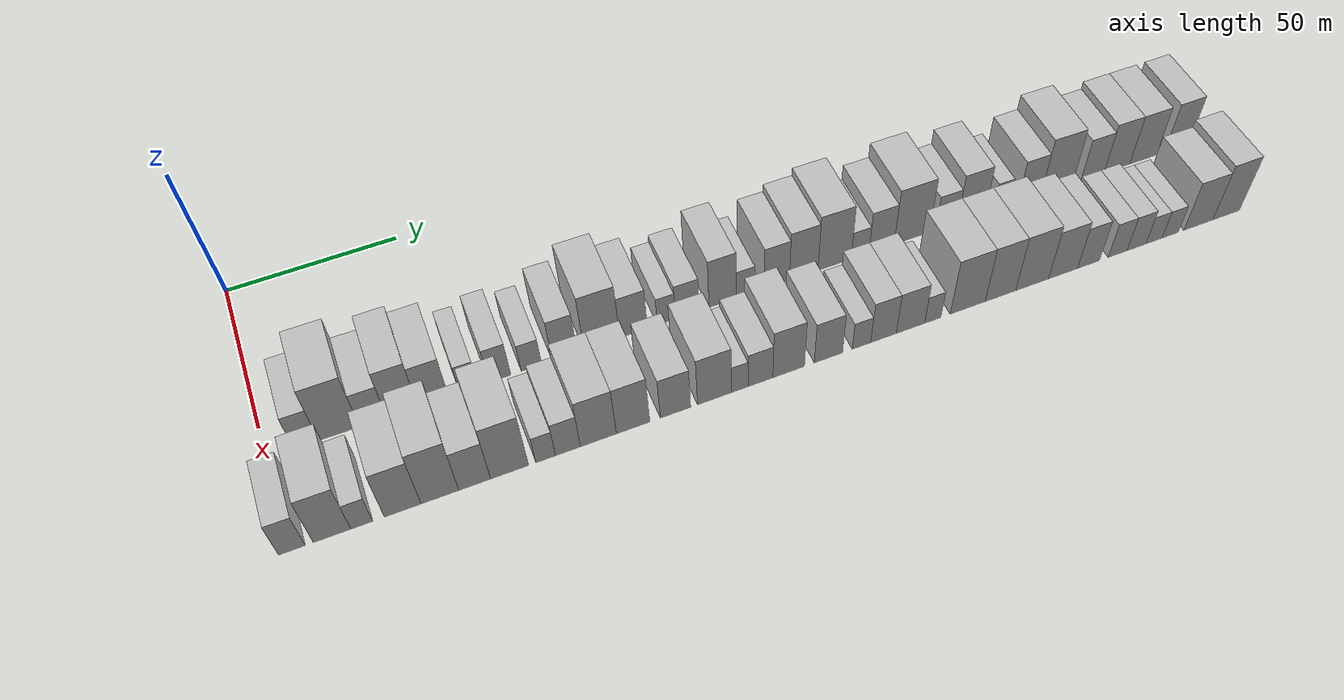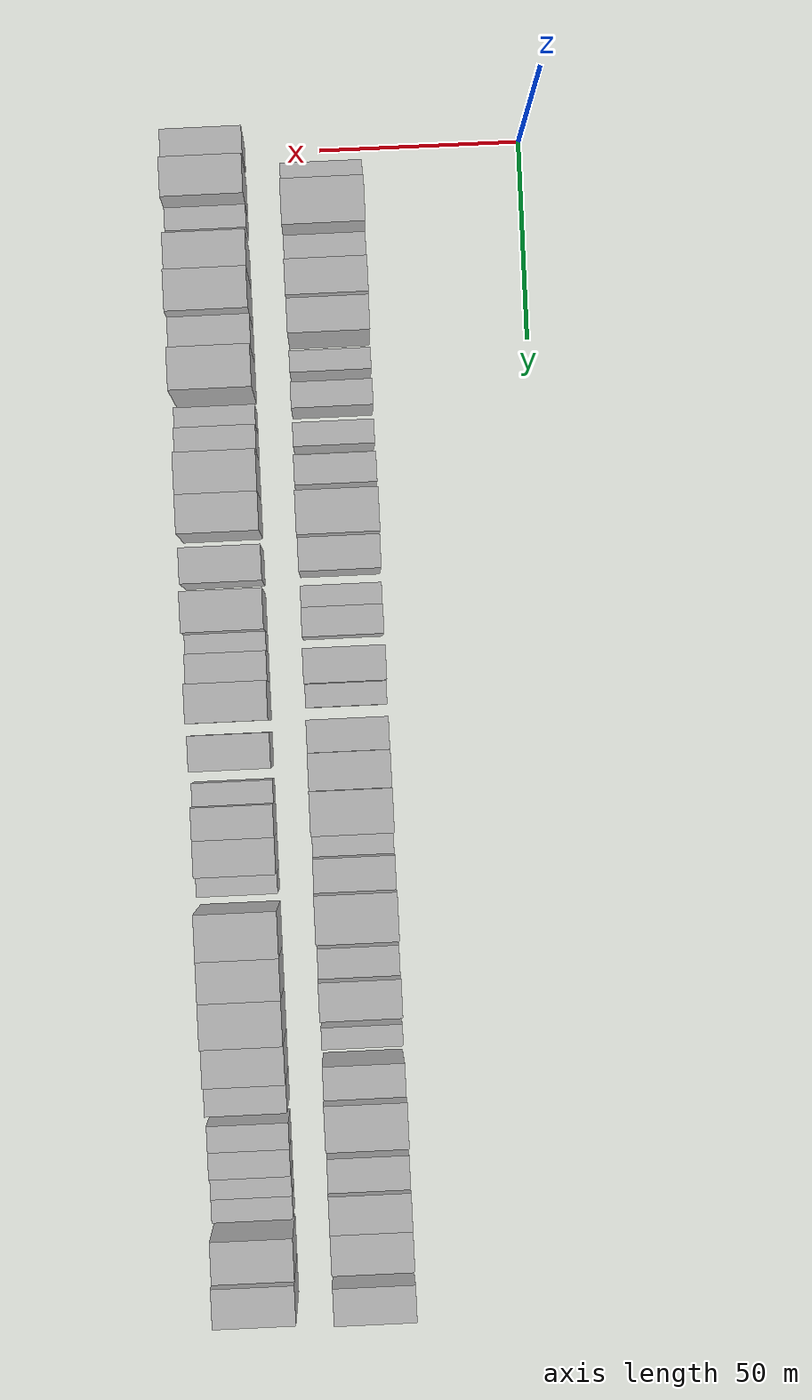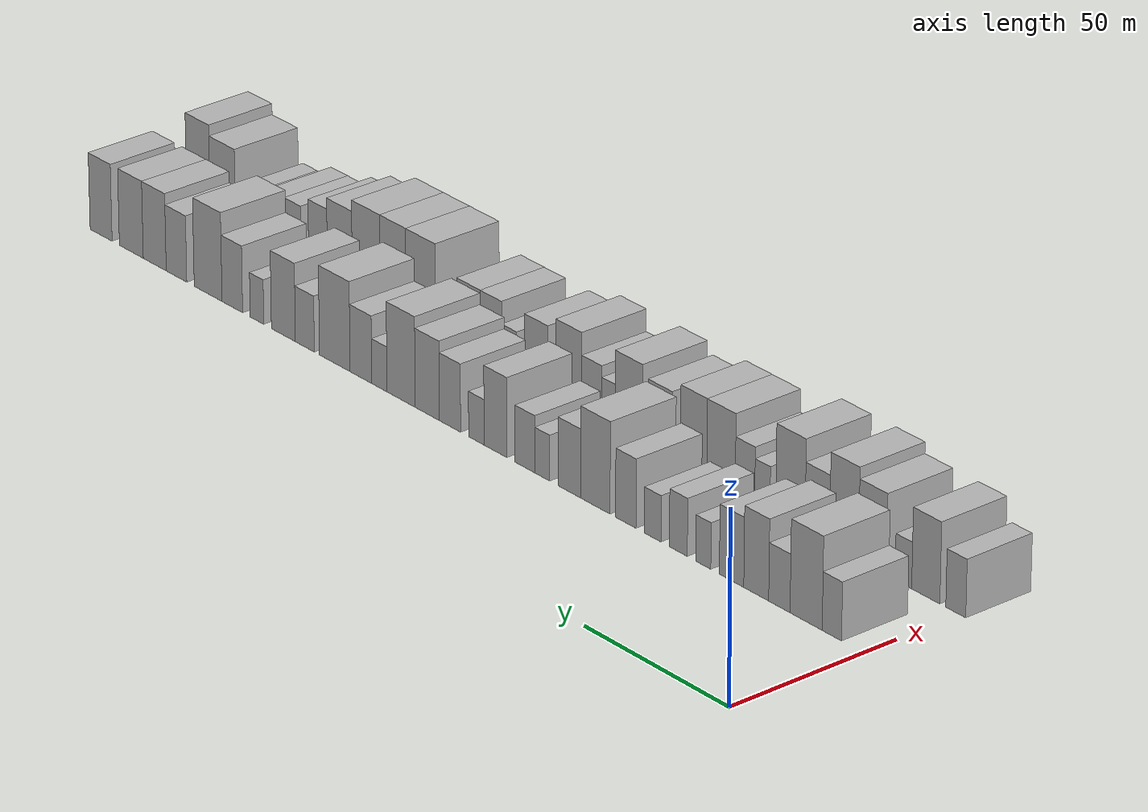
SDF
<sdf version="1.6">
 <world name="default">
  <model name="building_31">
   <static>1</static>
   <pose>50.0000 10.7795 0 0.000000 0.000000 0.000000</pose>
   <link name="link">
    <pose>0 0 7.50 0 0 0</pose>
    <collision name="collision"><geometry><box><size>20.0000 6.5830 15.0000</size></box></geometry></collision>
    <visual name="visual">
     <cast_shadows>0</cast_shadows>
     <geometry><box><size>20.0000 6.5830 15.0000</size></box></geometry>
     <material>
      <script>
       <uri>model://HANNAS_wall/materials/scripts</uri>
       <uri>model://HANNAS_wall/materials/textures</uri>
       <name>vrc/HANNAS_wall</name>
      </script>
     </material>
    </visual>
   </link>
  </model>
  <model name="building_32">
   <static>1</static>
   <pose>50.0000 19.5707 0 0.000000 0.000000 0.000000</pose>
   <link name="link">
    <pose>0 0 12.00 0 0 0</pose>
    <collision name="collision"><geometry><box><size>20.0000 10.9994 24.0000</size></box></geometry></collision>
    <visual name="visual">
     <cast_shadows>0</cast_shadows>
     <geometry><box><size>20.0000 10.9994 24.0000</size></box></geometry>
     <material>
      <script>
       <uri>model://HANNAS_wall/materials/scripts</uri>
       <uri>model://HANNAS_wall/materials/textures</uri>
       <name>vrc/HANNAS_wall</name>
      </script>
     </material>
    </visual>
   </link>
  </model>
  <model name="building_33">
   <static>1</static>
   <pose>50.0000 28.7614 0 0.000000 0.000000 0.000000</pose>
   <link name="link">
    <pose>0 0 7.50 0 0 0</pose>
    <collision name="collision"><geometry><box><size>20.0000 7.3819 15.0000</size></box></geometry></collision>
    <visual name="visual">
     <cast_shadows>0</cast_shadows>
     <geometry><box><size>20.0000 7.3819 15.0000</size></box></geometry>
     <material>
      <script>
       <uri>model://HANNAS_wall/materials/scripts</uri>
       <uri>model://HANNAS_wall/materials/textures</uri>
       <name>vrc/HANNAS_wall</name>
      </script>
     </material>
    </visual>
   </link>
  </model>
  <model name="building_34">
   <static>1</static>
   <pose>50.0000 36.7745 0 0.000000 0.000000 0.000000</pose>
   <link name="link">
    <pose>0 0 10.50 0 0 0</pose>
    <collision name="collision"><geometry><box><size>20.0000 8.6443 21.0000</size></box></geometry></collision>
    <visual name="visual">
     <cast_shadows>0</cast_shadows>
     <geometry><box><size>20.0000 8.6443 21.0000</size></box></geometry>
     <material>
      <script>
       <uri>model://HANNAS_wall/materials/scripts</uri>
       <uri>model://HANNAS_wall/materials/textures</uri>
       <name>vrc/HANNAS_wall</name>
      </script>
     </material>
    </visual>
   </link>
  </model>
  <model name="building_35">
   <static>1</static>
   <pose>50.0000 45.3542 0 0.000000 0.000000 0.000000</pose>
   <link name="link">
    <pose>0 0 9.00 0 0 0</pose>
    <collision name="collision"><geometry><box><size>20.0000 8.5152 18.0000</size></box></geometry></collision>
    <visual name="visual">
     <cast_shadows>0</cast_shadows>
     <geometry><box><size>20.0000 8.5152 18.0000</size></box></geometry>
     <material>
      <script>
       <uri>model://HANNAS_wall/materials/scripts</uri>
       <uri>model://HANNAS_wall/materials/textures</uri>
       <name>vrc/HANNAS_wall</name>
      </script>
     </material>
    </visual>
   </link>
  </model>
  <model name="building_36">
   <static>1</static>
   <pose>50.0000 55.2423 0 0.000000 0.000000 0.000000</pose>
   <link name="link">
    <pose>0 0 6.00 0 0 0</pose>
    <collision name="collision"><geometry><box><size>20.0000 5.2609 12.0000</size></box></geometry></collision>
    <visual name="visual">
     <cast_shadows>0</cast_shadows>
     <geometry><box><size>20.0000 5.2609 12.0000</size></box></geometry>
     <material>
      <script>
       <uri>model://HANNAS_wall/materials/scripts</uri>
       <uri>model://HANNAS_wall/materials/textures</uri>
       <name>vrc/HANNAS_wall</name>
      </script>
     </material>
    </visual>
   </link>
  </model>
  <model name="building_37">
   <static>1</static>
   <pose>50.0000 64.0448 0 0.000000 0.000000 0.000000</pose>
   <link name="link">
    <pose>0 0 7.50 0 0 0</pose>
    <collision name="collision"><geometry><box><size>20.0000 6.3442 15.0000</size></box></geometry></collision>
    <visual name="visual">
     <cast_shadows>0</cast_shadows>
     <geometry><box><size>20.0000 6.3442 15.0000</size></box></geometry>
     <material>
      <script>
       <uri>model://HANNAS_wall/materials/scripts</uri>
       <uri>model://HANNAS_wall/materials/textures</uri>
       <name>vrc/HANNAS_wall</name>
      </script>
     </material>
    </visual>
   </link>
  </model>
  <model name="building_38">
   <static>1</static>
   <pose>50.0000 73.1674 0 0.000000 0.000000 0.000000</pose>
   <link name="link">
    <pose>0 0 6.00 0 0 0</pose>
    <collision name="collision"><geometry><box><size>20.0000 5.9009 12.0000</size></box></geometry></collision>
    <visual name="visual">
     <cast_shadows>0</cast_shadows>
     <geometry><box><size>20.0000 5.9009 12.0000</size></box></geometry>
     <material>
      <script>
       <uri>model://HANNAS_wall/materials/scripts</uri>
       <uri>model://HANNAS_wall/materials/textures</uri>
       <name>vrc/HANNAS_wall</name>
      </script>
     </material>
    </visual>
   </link>
  </model>
  <model name="building_39">
   <static>1</static>
   <pose>50.0000 82.7733 0 0.000000 0.000000 0.000000</pose>
   <link name="link">
    <pose>0 0 9.00 0 0 0</pose>
    <collision name="collision"><geometry><box><size>20.0000 7.3110 18.0000</size></box></geometry></collision>
    <visual name="visual">
     <cast_shadows>0</cast_shadows>
     <geometry><box><size>20.0000 7.3110 18.0000</size></box></geometry>
     <material>
      <script>
       <uri>model://HANNAS_wall/materials/scripts</uri>
       <uri>model://HANNAS_wall/materials/textures</uri>
       <name>vrc/HANNAS_wall</name>
      </script>
     </material>
    </visual>
   </link>
  </model>
  <model name="building_40">
   <static>1</static>
   <pose>50.0000 93.7468 0 0.000000 0.000000 0.000000</pose>
   <link name="link">
    <pose>0 0 12.00 0 0 0</pose>
    <collision name="collision"><geometry><box><size>20.0000 10.6359 24.0000</size></box></geometry></collision>
    <visual name="visual">
     <cast_shadows>0</cast_shadows>
     <geometry><box><size>20.0000 10.6359 24.0000</size></box></geometry>
     <material>
      <script>
       <uri>model://HANNAS_wall/materials/scripts</uri>
       <uri>model://HANNAS_wall/materials/textures</uri>
       <name>vrc/HANNAS_wall</name>
      </script>
     </material>
    </visual>
   </link>
  </model>
  <model name="building_41">
   <static>1</static>
   <pose>50.0000 103.1954 0 0.000000 0.000000 0.000000</pose>
   <link name="link">
    <pose>0 0 9.00 0 0 0</pose>
    <collision name="collision"><geometry><box><size>20.0000 8.2614 18.0000</size></box></geometry></collision>
    <visual name="visual">
     <cast_shadows>0</cast_shadows>
     <geometry><box><size>20.0000 8.2614 18.0000</size></box></geometry>
     <material>
      <script>
       <uri>model://HANNAS_wall/materials/scripts</uri>
       <uri>model://HANNAS_wall/materials/textures</uri>
       <name>vrc/HANNAS_wall</name>
      </script>
     </material>
    </visual>
   </link>
  </model>
  <model name="building_42">
   <static>1</static>
   <pose>50.0000 113.0669 0 0.000000 0.000000 0.000000</pose>
   <link name="link">
    <pose>0 0 6.00 0 0 0</pose>
    <collision name="collision"><geometry><box><size>20.0000 5.4815 12.0000</size></box></geometry></collision>
    <visual name="visual">
     <cast_shadows>0</cast_shadows>
     <geometry><box><size>20.0000 5.4815 12.0000</size></box></geometry>
     <material>
      <script>
       <uri>model://HANNAS_wall/materials/scripts</uri>
       <uri>model://HANNAS_wall/materials/textures</uri>
       <name>vrc/HANNAS_wall</name>
      </script>
     </material>
    </visual>
   </link>
  </model>
  <model name="building_43">
   <static>1</static>
   <pose>50.0000 119.4377 0 0.000000 0.000000 0.000000</pose>
   <link name="link">
    <pose>0 0 7.50 0 0 0</pose>
    <collision name="collision"><geometry><box><size>20.0000 7.2602 15.0000</size></box></geometry></collision>
    <visual name="visual">
     <cast_shadows>0</cast_shadows>
     <geometry><box><size>20.0000 7.2602 15.0000</size></box></geometry>
     <material>
      <script>
       <uri>model://HANNAS_wall/materials/scripts</uri>
       <uri>model://HANNAS_wall/materials/textures</uri>
       <name>vrc/HANNAS_wall</name>
      </script>
     </material>
    </visual>
   </link>
  </model>
  <model name="building_44">
   <static>1</static>
   <pose>50.0000 130.3110 0 0.000000 0.000000 0.000000</pose>
   <link name="link">
    <pose>0 0 10.50 0 0 0</pose>
    <collision name="collision"><geometry><box><size>20.0000 8.4865 21.0000</size></box></geometry></collision>
    <visual name="visual">
     <cast_shadows>0</cast_shadows>
     <geometry><box><size>20.0000 8.4865 21.0000</size></box></geometry>
     <material>
      <script>
       <uri>model://HANNAS_wall/materials/scripts</uri>
       <uri>model://HANNAS_wall/materials/textures</uri>
       <name>vrc/HANNAS_wall</name>
      </script>
     </material>
    </visual>
   </link>
  </model>
  <model name="building_45">
   <static>1</static>
   <pose>50.0000 137.4243 0 0.000000 0.000000 0.000000</pose>
   <link name="link">
    <pose>0 0 6.00 0 0 0</pose>
    <collision name="collision"><geometry><box><size>20.0000 5.7400 12.0000</size></box></geometry></collision>
    <visual name="visual">
     <cast_shadows>0</cast_shadows>
     <geometry><box><size>20.0000 5.7400 12.0000</size></box></geometry>
     <material>
      <script>
       <uri>model://HANNAS_wall/materials/scripts</uri>
       <uri>model://HANNAS_wall/materials/textures</uri>
       <name>vrc/HANNAS_wall</name>
      </script>
     </material>
    </visual>
   </link>
  </model>
  <model name="building_46">
   <static>1</static>
   <pose>50.0000 147.2909 0 0.000000 0.000000 0.000000</pose>
   <link name="link">
    <pose>0 0 9.00 0 0 0</pose>
    <collision name="collision"><geometry><box><size>20.0000 7.9932 18.0000</size></box></geometry></collision>
    <visual name="visual">
     <cast_shadows>0</cast_shadows>
     <geometry><box><size>20.0000 7.9932 18.0000</size></box></geometry>
     <material>
      <script>
       <uri>model://HANNAS_wall/materials/scripts</uri>
       <uri>model://HANNAS_wall/materials/textures</uri>
       <name>vrc/HANNAS_wall</name>
      </script>
     </material>
    </visual>
   </link>
  </model>
  <model name="building_47">
   <static>1</static>
   <pose>50.0000 155.8507 0 0.000000 0.000000 0.000000</pose>
   <link name="link">
    <pose>0 0 10.50 0 0 0</pose>
    <collision name="collision"><geometry><box><size>20.0000 9.1264 21.0000</size></box></geometry></collision>
    <visual name="visual">
     <cast_shadows>0</cast_shadows>
     <geometry><box><size>20.0000 9.1264 21.0000</size></box></geometry>
     <material>
      <script>
       <uri>model://HANNAS_wall/materials/scripts</uri>
       <uri>model://HANNAS_wall/materials/textures</uri>
       <name>vrc/HANNAS_wall</name>
      </script>
     </material>
    </visual>
   </link>
  </model>
  <model name="building_48">
   <static>1</static>
   <pose>50.0000 165.7741 0 0.000000 0.000000 0.000000</pose>
   <link name="link">
    <pose>0 0 12.00 0 0 0</pose>
    <collision name="collision"><geometry><box><size>20.0000 10.7204 24.0000</size></box></geometry></collision>
    <visual name="visual">
     <cast_shadows>0</cast_shadows>
     <geometry><box><size>20.0000 10.7204 24.0000</size></box></geometry>
     <material>
      <script>
       <uri>model://HANNAS_wall/materials/scripts</uri>
       <uri>model://HANNAS_wall/materials/textures</uri>
       <name>vrc/HANNAS_wall</name>
      </script>
     </material>
    </visual>
   </link>
  </model>
  <model name="building_49">
   <static>1</static>
   <pose>50.0000 174.0424 0 0.000000 0.000000 0.000000</pose>
   <link name="link">
    <pose>0 0 6.00 0 0 0</pose>
    <collision name="collision"><geometry><box><size>20.0000 5.8160 12.0000</size></box></geometry></collision>
    <visual name="visual">
     <cast_shadows>0</cast_shadows>
     <geometry><box><size>20.0000 5.8160 12.0000</size></box></geometry>
     <material>
      <script>
       <uri>model://HANNAS_wall/materials/scripts</uri>
       <uri>model://HANNAS_wall/materials/textures</uri>
       <name>vrc/HANNAS_wall</name>
      </script>
     </material>
    </visual>
   </link>
  </model>
  <model name="building_50">
   <static>1</static>
   <pose>50.0000 181.1115 0 0.000000 0.000000 0.000000</pose>
   <link name="link">
    <pose>0 0 9.00 0 0 0</pose>
    <collision name="collision"><geometry><box><size>20.0000 8.3222 18.0000</size></box></geometry></collision>
    <visual name="visual">
     <cast_shadows>0</cast_shadows>
     <geometry><box><size>20.0000 8.3222 18.0000</size></box></geometry>
     <material>
      <script>
       <uri>model://HANNAS_wall/materials/scripts</uri>
       <uri>model://HANNAS_wall/materials/textures</uri>
       <name>vrc/HANNAS_wall</name>
      </script>
     </material>
    </visual>
   </link>
  </model>
  <model name="building_51">
   <static>1</static>
   <pose>50.0000 191.1961 0 0.000000 0.000000 0.000000</pose>
   <link name="link">
    <pose>0 0 12.00 0 0 0</pose>
    <collision name="collision"><geometry><box><size>20.0000 11.8470 24.0000</size></box></geometry></collision>
    <visual name="visual">
     <cast_shadows>0</cast_shadows>
     <geometry><box><size>20.0000 11.8470 24.0000</size></box></geometry>
     <material>
      <script>
       <uri>model://HANNAS_wall/materials/scripts</uri>
       <uri>model://HANNAS_wall/materials/textures</uri>
       <name>vrc/HANNAS_wall</name>
      </script>
     </material>
    </visual>
   </link>
  </model>
  <model name="building_52">
   <static>1</static>
   <pose>50.0000 202.8161 0 0.000000 0.000000 0.000000</pose>
   <link name="link">
    <pose>0 0 7.50 0 0 0</pose>
    <collision name="collision"><geometry><box><size>20.0000 7.3930 15.0000</size></box></geometry></collision>
    <visual name="visual">
     <cast_shadows>0</cast_shadows>
     <geometry><box><size>20.0000 7.3930 15.0000</size></box></geometry>
     <material>
      <script>
       <uri>model://HANNAS_wall/materials/scripts</uri>
       <uri>model://HANNAS_wall/materials/textures</uri>
       <name>vrc/HANNAS_wall</name>
      </script>
     </material>
    </visual>
   </link>
  </model>
  <model name="building_53">
   <static>1</static>
   <pose>50.0000 211.2245 0 0.000000 0.000000 0.000000</pose>
   <link name="link">
    <pose>0 0 10.50 0 0 0</pose>
    <collision name="collision"><geometry><box><size>20.0000 9.4239 21.0000</size></box></geometry></collision>
    <visual name="visual">
     <cast_shadows>0</cast_shadows>
     <geometry><box><size>20.0000 9.4239 21.0000</size></box></geometry>
     <material>
      <script>
       <uri>model://HANNAS_wall/materials/scripts</uri>
       <uri>model://HANNAS_wall/materials/textures</uri>
       <name>vrc/HANNAS_wall</name>
      </script>
     </material>
    </visual>
   </link>
  </model>
  <model name="building_54">
   <static>1</static>
   <pose>50.0000 221.6226 0 0.000000 0.000000 0.000000</pose>
   <link name="link">
    <pose>0 0 6.00 0 0 0</pose>
    <collision name="collision"><geometry><box><size>20.0000 5.3722 12.0000</size></box></geometry></collision>
    <visual name="visual">
     <cast_shadows>0</cast_shadows>
     <geometry><box><size>20.0000 5.3722 12.0000</size></box></geometry>
     <material>
      <script>
       <uri>model://HANNAS_wall/materials/scripts</uri>
       <uri>model://HANNAS_wall/materials/textures</uri>
       <name>vrc/HANNAS_wall</name>
      </script>
     </material>
    </visual>
   </link>
  </model>
  <model name="building_55">
   <static>1</static>
   <pose>50.0000 231.4032 0 0.000000 0.000000 0.000000</pose>
   <link name="link">
    <pose>0 0 9.00 0 0 0</pose>
    <collision name="collision"><geometry><box><size>20.0000 8.1891 18.0000</size></box></geometry></collision>
    <visual name="visual">
     <cast_shadows>0</cast_shadows>
     <geometry><box><size>20.0000 8.1891 18.0000</size></box></geometry>
     <material>
      <script>
       <uri>model://HANNAS_wall/materials/scripts</uri>
       <uri>model://HANNAS_wall/materials/textures</uri>
       <name>vrc/HANNAS_wall</name>
      </script>
     </material>
    </visual>
   </link>
  </model>
  <model name="building_56">
   <static>1</static>
   <pose>50.0000 241.0677 0 0.000000 0.000000 0.000000</pose>
   <link name="link">
    <pose>0 0 12.00 0 0 0</pose>
    <collision name="collision"><geometry><box><size>20.0000 11.1399 24.0000</size></box></geometry></collision>
    <visual name="visual">
     <cast_shadows>0</cast_shadows>
     <geometry><box><size>20.0000 11.1399 24.0000</size></box></geometry>
     <material>
      <script>
       <uri>model://HANNAS_wall/materials/scripts</uri>
       <uri>model://HANNAS_wall/materials/textures</uri>
       <name>vrc/HANNAS_wall</name>
      </script>
     </material>
    </visual>
   </link>
  </model>
  <model name="building_57">
   <static>1</static>
   <pose>50.0000 253.7902 0 0.000000 0.000000 0.000000</pose>
   <link name="link">
    <pose>0 0 9.00 0 0 0</pose>
    <collision name="collision"><geometry><box><size>20.0000 8.3051 18.0000</size></box></geometry></collision>
    <visual name="visual">
     <cast_shadows>0</cast_shadows>
     <geometry><box><size>20.0000 8.3051 18.0000</size></box></geometry>
     <material>
      <script>
       <uri>model://HANNAS_wall/materials/scripts</uri>
       <uri>model://HANNAS_wall/materials/textures</uri>
       <name>vrc/HANNAS_wall</name>
      </script>
     </material>
    </visual>
   </link>
  </model>
  <model name="building_58">
   <static>1</static>
   <pose>50.0000 262.6030 0 0.000000 0.000000 0.000000</pose>
   <link name="link">
    <pose>0 0 10.50 0 0 0</pose>
    <collision name="collision"><geometry><box><size>20.0000 9.3206 21.0000</size></box></geometry></collision>
    <visual name="visual">
     <cast_shadows>0</cast_shadows>
     <geometry><box><size>20.0000 9.3206 21.0000</size></box></geometry>
     <material>
      <script>
       <uri>model://HANNAS_wall/materials/scripts</uri>
       <uri>model://HANNAS_wall/materials/textures</uri>
       <name>vrc/HANNAS_wall</name>
      </script>
     </material>
    </visual>
   </link>
  </model>
  <model name="building_59">
   <static>1</static>
   <pose>50.0000 272.1451 0 0.000000 0.000000 0.000000</pose>
   <link name="link">
    <pose>0 0 10.50 0 0 0</pose>
    <collision name="collision"><geometry><box><size>20.0000 9.7635 21.0000</size></box></geometry></collision>
    <visual name="visual">
     <cast_shadows>0</cast_shadows>
     <geometry><box><size>20.0000 9.7635 21.0000</size></box></geometry>
     <material>
      <script>
       <uri>model://HANNAS_wall/materials/scripts</uri>
       <uri>model://HANNAS_wall/materials/textures</uri>
       <name>vrc/HANNAS_wall</name>
      </script>
     </material>
    </visual>
   </link>
  </model>
  <model name="building_60">
   <static>1</static>
   <pose>50.0000 284.5463 0 0.000000 0.000000 0.000000</pose>
   <link name="link">
    <pose>0 0 10.50 0 0 0</pose>
    <collision name="collision"><geometry><box><size>20.0000 9.0389 21.0000</size></box></geometry></collision>
    <visual name="visual">
     <cast_shadows>0</cast_shadows>
     <geometry><box><size>20.0000 9.0389 21.0000</size></box></geometry>
     <material>
      <script>
       <uri>model://HANNAS_wall/materials/scripts</uri>
       <uri>model://HANNAS_wall/materials/textures</uri>
       <name>vrc/HANNAS_wall</name>
      </script>
     </material>
    </visual>
   </link>
  </model>
  <model name="building_93">
   <static>1</static>
   <pose>79.0000 1.1719 0 0.000000 0.000000 0.000000</pose>
   <link name="link">
    <pose>0 0 7.50 0 0 0</pose>
    <collision name="collision"><geometry><box><size>20.0000 6.7322 15.0000</size></box></geometry></collision>
    <visual name="visual">
     <cast_shadows>0</cast_shadows>
     <geometry><box><size>20.0000 6.7322 15.0000</size></box></geometry>
     <material>
      <script>
       <uri>model://HANNAS_wall/materials/scripts</uri>
       <uri>model://HANNAS_wall/materials/textures</uri>
       <name>vrc/HANNAS_wall</name>
      </script>
     </material>
    </visual>
   </link>
  </model>
  <model name="building_94">
   <static>1</static>
   <pose>79.0000 11.3233 0 0.000000 0.000000 0.000000</pose>
   <link name="link">
    <pose>0 0 10.50 0 0 0</pose>
    <collision name="collision"><geometry><box><size>20.0000 9.5707 21.0000</size></box></geometry></collision>
    <visual name="visual">
     <cast_shadows>0</cast_shadows>
     <geometry><box><size>20.0000 9.5707 21.0000</size></box></geometry>
     <material>
      <script>
       <uri>model://HANNAS_wall/materials/scripts</uri>
       <uri>model://HANNAS_wall/materials/textures</uri>
       <name>vrc/HANNAS_wall</name>
      </script>
     </material>
    </visual>
   </link>
  </model>
  <model name="building_95">
   <static>1</static>
   <pose>79.0000 18.9396 0 0.000000 0.000000 0.000000</pose>
   <link name="link">
    <pose>0 0 6.00 0 0 0</pose>
    <collision name="collision"><geometry><box><size>20.0000 5.6618 12.0000</size></box></geometry></collision>
    <visual name="visual">
     <cast_shadows>0</cast_shadows>
     <geometry><box><size>20.0000 5.6618 12.0000</size></box></geometry>
     <material>
      <script>
       <uri>model://HANNAS_wall/materials/scripts</uri>
       <uri>model://HANNAS_wall/materials/textures</uri>
       <name>vrc/HANNAS_wall</name>
      </script>
     </material>
    </visual>
   </link>
  </model>
  <model name="building_96">
   <static>1</static>
   <pose>79.0000 29.5734 0 0.000000 0.000000 0.000000</pose>
   <link name="link">
    <pose>0 0 10.50 0 0 0</pose>
    <collision name="collision"><geometry><box><size>20.0000 9.6057 21.0000</size></box></geometry></collision>
    <visual name="visual">
     <cast_shadows>0</cast_shadows>
     <geometry><box><size>20.0000 9.6057 21.0000</size></box></geometry>
     <material>
      <script>
       <uri>model://HANNAS_wall/materials/scripts</uri>
       <uri>model://HANNAS_wall/materials/textures</uri>
       <name>vrc/HANNAS_wall</name>
      </script>
     </material>
    </visual>
   </link>
  </model>
  <model name="building_97">
   <static>1</static>
   <pose>79.0000 39.3763 0 0.000000 0.000000 0.000000</pose>
   <link name="link">
    <pose>0 0 12.00 0 0 0</pose>
    <collision name="collision"><geometry><box><size>20.0000 10.0002 24.0000</size></box></geometry></collision>
    <visual name="visual">
     <cast_shadows>0</cast_shadows>
     <geometry><box><size>20.0000 10.0002 24.0000</size></box></geometry>
     <material>
      <script>
       <uri>model://HANNAS_wall/materials/scripts</uri>
       <uri>model://HANNAS_wall/materials/textures</uri>
       <name>vrc/HANNAS_wall</name>
      </script>
     </material>
    </visual>
   </link>
  </model>
  <model name="building_98">
   <static>1</static>
   <pose>79.0000 48.6599 0 0.000000 0.000000 0.000000</pose>
   <link name="link">
    <pose>0 0 9.00 0 0 0</pose>
    <collision name="collision"><geometry><box><size>20.0000 8.5671 18.0000</size></box></geometry></collision>
    <visual name="visual">
     <cast_shadows>0</cast_shadows>
     <geometry><box><size>20.0000 8.5671 18.0000</size></box></geometry>
     <material>
      <script>
       <uri>model://HANNAS_wall/materials/scripts</uri>
       <uri>model://HANNAS_wall/materials/textures</uri>
       <name>vrc/HANNAS_wall</name>
      </script>
     </material>
    </visual>
   </link>
  </model>
  <model name="building_99">
   <static>1</static>
   <pose>79.0000 58.0916 0 0.000000 0.000000 0.000000</pose>
   <link name="link">
    <pose>0 0 12.00 0 0 0</pose>
    <collision name="collision"><geometry><box><size>20.0000 10.2963 24.0000</size></box></geometry></collision>
    <visual name="visual">
     <cast_shadows>0</cast_shadows>
     <geometry><box><size>20.0000 10.2963 24.0000</size></box></geometry>
     <material>
      <script>
       <uri>model://HANNAS_wall/materials/scripts</uri>
       <uri>model://HANNAS_wall/materials/textures</uri>
       <name>vrc/HANNAS_wall</name>
      </script>
     </material>
    </visual>
   </link>
  </model>
  <model name="building_100">
   <static>1</static>
   <pose>79.0000 67.9423 0 0.000000 0.000000 0.000000</pose>
   <link name="link">
    <pose>0 0 6.00 0 0 0</pose>
    <collision name="collision"><geometry><box><size>20.0000 5.4050 12.0000</size></box></geometry></collision>
    <visual name="visual">
     <cast_shadows>0</cast_shadows>
     <geometry><box><size>20.0000 5.4050 12.0000</size></box></geometry>
     <material>
      <script>
       <uri>model://HANNAS_wall/materials/scripts</uri>
       <uri>model://HANNAS_wall/materials/textures</uri>
       <name>vrc/HANNAS_wall</name>
      </script>
     </material>
    </visual>
   </link>
  </model>
  <model name="building_101">
   <static>1</static>
   <pose>79.0000 74.1034 0 0.000000 0.000000 0.000000</pose>
   <link name="link">
    <pose>0 0 7.50 0 0 0</pose>
    <collision name="collision"><geometry><box><size>20.0000 6.9172 15.0000</size></box></geometry></collision>
    <visual name="visual">
     <cast_shadows>0</cast_shadows>
     <geometry><box><size>20.0000 6.9172 15.0000</size></box></geometry>
     <material>
      <script>
       <uri>model://HANNAS_wall/materials/scripts</uri>
       <uri>model://HANNAS_wall/materials/textures</uri>
       <name>vrc/HANNAS_wall</name>
      </script>
     </material>
    </visual>
   </link>
  </model>
  <model name="building_102">
   <static>1</static>
   <pose>79.0000 82.6404 0 0.000000 0.000000 0.000000</pose>
   <link name="link">
    <pose>0 0 10.50 0 0 0</pose>
    <collision name="collision"><geometry><box><size>20.0000 10.1568 21.0000</size></box></geometry></collision>
    <visual name="visual">
     <cast_shadows>0</cast_shadows>
     <geometry><box><size>20.0000 10.1568 21.0000</size></box></geometry>
     <material>
      <script>
       <uri>model://HANNAS_wall/materials/scripts</uri>
       <uri>model://HANNAS_wall/materials/textures</uri>
       <name>vrc/HANNAS_wall</name>
      </script>
     </material>
    </visual>
   </link>
  </model>
  <model name="building_103">
   <static>1</static>
   <pose>79.0000 92.4627 0 0.000000 0.000000 0.000000</pose>
   <link name="link">
    <pose>0 0 10.50 0 0 0</pose>
    <collision name="collision"><geometry><box><size>20.0000 9.4878 21.0000</size></box></geometry></collision>
    <visual name="visual">
     <cast_shadows>0</cast_shadows>
     <geometry><box><size>20.0000 9.4878 21.0000</size></box></geometry>
     <material>
      <script>
       <uri>model://HANNAS_wall/materials/scripts</uri>
       <uri>model://HANNAS_wall/materials/textures</uri>
       <name>vrc/HANNAS_wall</name>
      </script>
     </material>
    </visual>
   </link>
  </model>
  <model name="building_104">
   <static>1</static>
   <pose>79.0000 104.5976 0 0.000000 0.000000 0.000000</pose>
   <link name="link">
    <pose>0 0 9.00 0 0 0</pose>
    <collision name="collision"><geometry><box><size>20.0000 8.7821 18.0000</size></box></geometry></collision>
    <visual name="visual">
     <cast_shadows>0</cast_shadows>
     <geometry><box><size>20.0000 8.7821 18.0000</size></box></geometry>
     <material>
      <script>
       <uri>model://HANNAS_wall/materials/scripts</uri>
       <uri>model://HANNAS_wall/materials/textures</uri>
       <name>vrc/HANNAS_wall</name>
      </script>
     </material>
    </visual>
   </link>
  </model>
  <model name="building_105">
   <static>1</static>
   <pose>79.0000 115.9924 0 0.000000 0.000000 0.000000</pose>
   <link name="link">
    <pose>0 0 10.50 0 0 0</pose>
    <collision name="collision"><geometry><box><size>20.0000 10.0074 21.0000</size></box></geometry></collision>
    <visual name="visual">
     <cast_shadows>0</cast_shadows>
     <geometry><box><size>20.0000 10.0074 21.0000</size></box></geometry>
     <material>
      <script>
       <uri>model://HANNAS_wall/materials/scripts</uri>
       <uri>model://HANNAS_wall/materials/textures</uri>
       <name>vrc/HANNAS_wall</name>
      </script>
     </material>
    </visual>
   </link>
  </model>
  <model name="building_106">
   <static>1</static>
   <pose>79.0000 123.4366 0 0.000000 0.000000 0.000000</pose>
   <link name="link">
    <pose>0 0 6.00 0 0 0</pose>
    <collision name="collision"><geometry><box><size>20.0000 4.8809 12.0000</size></box></geometry></collision>
    <visual name="visual">
     <cast_shadows>0</cast_shadows>
     <geometry><box><size>20.0000 4.8809 12.0000</size></box></geometry>
     <material>
      <script>
       <uri>model://HANNAS_wall/materials/scripts</uri>
       <uri>model://HANNAS_wall/materials/textures</uri>
       <name>vrc/HANNAS_wall</name>
      </script>
     </material>
    </visual>
   </link>
  </model>
  <model name="building_107">
   <static>1</static>
   <pose>79.0000 129.5787 0 0.000000 0.000000 0.000000</pose>
   <link name="link">
    <pose>0 0 7.50 0 0 0</pose>
    <collision name="collision"><geometry><box><size>20.0000 7.4034 15.0000</size></box></geometry></collision>
    <visual name="visual">
     <cast_shadows>0</cast_shadows>
     <geometry><box><size>20.0000 7.4034 15.0000</size></box></geometry>
     <material>
      <script>
       <uri>model://HANNAS_wall/materials/scripts</uri>
       <uri>model://HANNAS_wall/materials/textures</uri>
       <name>vrc/HANNAS_wall</name>
      </script>
     </material>
    </visual>
   </link>
  </model>
  <model name="building_108">
   <static>1</static>
   <pose>79.0000 138.0638 0 0.000000 0.000000 0.000000</pose>
   <link name="link">
    <pose>0 0 10.50 0 0 0</pose>
    <collision name="collision"><geometry><box><size>20.0000 9.5667 21.0000</size></box></geometry></collision>
    <visual name="visual">
     <cast_shadows>0</cast_shadows>
     <geometry><box><size>20.0000 9.5667 21.0000</size></box></geometry>
     <material>
      <script>
       <uri>model://HANNAS_wall/materials/scripts</uri>
       <uri>model://HANNAS_wall/materials/textures</uri>
       <name>vrc/HANNAS_wall</name>
      </script>
     </material>
    </visual>
   </link>
  </model>
  <model name="building_109">
   <static>1</static>
   <pose>79.0000 150.1865 0 0.000000 0.000000 0.000000</pose>
   <link name="link">
    <pose>0 0 9.00 0 0 0</pose>
    <collision name="collision"><geometry><box><size>20.0000 8.6786 18.0000</size></box></geometry></collision>
    <visual name="visual">
     <cast_shadows>0</cast_shadows>
     <geometry><box><size>20.0000 8.6786 18.0000</size></box></geometry>
     <material>
      <script>
       <uri>model://HANNAS_wall/materials/scripts</uri>
       <uri>model://HANNAS_wall/materials/textures</uri>
       <name>vrc/HANNAS_wall</name>
      </script>
     </material>
    </visual>
   </link>
  </model>
  <model name="building_110">
   <static>1</static>
   <pose>79.0000 160.3820 0 0.000000 0.000000 0.000000</pose>
   <link name="link">
    <pose>0 0 6.00 0 0 0</pose>
    <collision name="collision"><geometry><box><size>20.0000 5.7125 12.0000</size></box></geometry></collision>
    <visual name="visual">
     <cast_shadows>0</cast_shadows>
     <geometry><box><size>20.0000 5.7125 12.0000</size></box></geometry>
     <material>
      <script>
       <uri>model://HANNAS_wall/materials/scripts</uri>
       <uri>model://HANNAS_wall/materials/textures</uri>
       <name>vrc/HANNAS_wall</name>
      </script>
     </material>
    </visual>
   </link>
  </model>
  <model name="building_111">
   <static>1</static>
   <pose>79.0000 167.2654 0 0.000000 0.000000 0.000000</pose>
   <link name="link">
    <pose>0 0 9.00 0 0 0</pose>
    <collision name="collision"><geometry><box><size>20.0000 8.0543 18.0000</size></box></geometry></collision>
    <visual name="visual">
     <cast_shadows>0</cast_shadows>
     <geometry><box><size>20.0000 8.0543 18.0000</size></box></geometry>
     <material>
      <script>
       <uri>model://HANNAS_wall/materials/scripts</uri>
       <uri>model://HANNAS_wall/materials/textures</uri>
       <name>vrc/HANNAS_wall</name>
      </script>
     </material>
    </visual>
   </link>
  </model>
  <model name="building_112">
   <static>1</static>
   <pose>79.0000 175.7738 0 0.000000 0.000000 0.000000</pose>
   <link name="link">
    <pose>0 0 9.00 0 0 0</pose>
    <collision name="collision"><geometry><box><size>20.0000 8.9624 18.0000</size></box></geometry></collision>
    <visual name="visual">
     <cast_shadows>0</cast_shadows>
     <geometry><box><size>20.0000 8.9624 18.0000</size></box></geometry>
     <material>
      <script>
       <uri>model://HANNAS_wall/materials/scripts</uri>
       <uri>model://HANNAS_wall/materials/textures</uri>
       <name>vrc/HANNAS_wall</name>
      </script>
     </material>
    </visual>
   </link>
  </model>
  <model name="building_113">
   <static>1</static>
   <pose>79.0000 182.8644 0 0.000000 0.000000 0.000000</pose>
   <link name="link">
    <pose>0 0 6.00 0 0 0</pose>
    <collision name="collision"><geometry><box><size>20.0000 5.2190 12.0000</size></box></geometry></collision>
    <visual name="visual">
     <cast_shadows>0</cast_shadows>
     <geometry><box><size>20.0000 5.2190 12.0000</size></box></geometry>
     <material>
      <script>
       <uri>model://HANNAS_wall/materials/scripts</uri>
       <uri>model://HANNAS_wall/materials/textures</uri>
       <name>vrc/HANNAS_wall</name>
      </script>
     </material>
    </visual>
   </link>
  </model>
  <model name="building_114">
   <static>1</static>
   <pose>79.0000 194.1457 0 0.000000 0.000000 0.000000</pose>
   <link name="link">
    <pose>0 0 12.00 0 0 0</pose>
    <collision name="collision"><geometry><box><size>20.0000 11.3435 24.0000</size></box></geometry></collision>
    <visual name="visual">
     <cast_shadows>0</cast_shadows>
     <geometry><box><size>20.0000 11.3435 24.0000</size></box></geometry>
     <material>
      <script>
       <uri>model://HANNAS_wall/materials/scripts</uri>
       <uri>model://HANNAS_wall/materials/textures</uri>
       <name>vrc/HANNAS_wall</name>
      </script>
     </material>
    </visual>
   </link>
  </model>
  <model name="building_115">
   <static>1</static>
   <pose>79.0000 204.8327 0 0.000000 0.000000 0.000000</pose>
   <link name="link">
    <pose>0 0 12.00 0 0 0</pose>
    <collision name="collision"><geometry><box><size>20.0000 10.0306 24.0000</size></box></geometry></collision>
    <visual name="visual">
     <cast_shadows>0</cast_shadows>
     <geometry><box><size>20.0000 10.0306 24.0000</size></box></geometry>
     <material>
      <script>
       <uri>model://HANNAS_wall/materials/scripts</uri>
       <uri>model://HANNAS_wall/materials/textures</uri>
       <name>vrc/HANNAS_wall</name>
      </script>
     </material>
    </visual>
   </link>
  </model>
  <model name="building_116">
   <static>1</static>
   <pose>79.0000 215.3264 0 0.000000 0.000000 0.000000</pose>
   <link name="link">
    <pose>0 0 12.00 0 0 0</pose>
    <collision name="collision"><geometry><box><size>20.0000 10.9568 24.0000</size></box></geometry></collision>
    <visual name="visual">
     <cast_shadows>0</cast_shadows>
     <geometry><box><size>20.0000 10.9568 24.0000</size></box></geometry>
     <material>
      <script>
       <uri>model://HANNAS_wall/materials/scripts</uri>
       <uri>model://HANNAS_wall/materials/textures</uri>
       <name>vrc/HANNAS_wall</name>
      </script>
     </material>
    </visual>
   </link>
  </model>
  <model name="building_117">
   <static>1</static>
   <pose>79.0000 225.7204 0 0.000000 0.000000 0.000000</pose>
   <link name="link">
    <pose>0 0 10.50 0 0 0</pose>
    <collision name="collision"><geometry><box><size>20.0000 9.8311 21.0000</size></box></geometry></collision>
    <visual name="visual">
     <cast_shadows>0</cast_shadows>
     <geometry><box><size>20.0000 9.8311 21.0000</size></box></geometry>
     <material>
      <script>
       <uri>model://HANNAS_wall/materials/scripts</uri>
       <uri>model://HANNAS_wall/materials/textures</uri>
       <name>vrc/HANNAS_wall</name>
      </script>
     </material>
    </visual>
   </link>
  </model>
  <model name="building_118">
   <static>1</static>
   <pose>79.0000 234.3515 0 0.000000 0.000000 0.000000</pose>
   <link name="link">
    <pose>0 0 9.00 0 0 0</pose>
    <collision name="collision"><geometry><box><size>20.0000 7.4312 18.0000</size></box></geometry></collision>
    <visual name="visual">
     <cast_shadows>0</cast_shadows>
     <geometry><box><size>20.0000 7.4312 18.0000</size></box></geometry>
     <material>
      <script>
       <uri>model://HANNAS_wall/materials/scripts</uri>
       <uri>model://HANNAS_wall/materials/textures</uri>
       <name>vrc/HANNAS_wall</name>
      </script>
     </material>
    </visual>
   </link>
  </model>
  <model name="building_119">
   <static>1</static>
   <pose>79.0000 244.3160 0 0.000000 0.000000 0.000000</pose>
   <link name="link">
    <pose>0 0 7.50 0 0 0</pose>
    <collision name="collision"><geometry><box><size>20.0000 6.4978 15.0000</size></box></geometry></collision>
    <visual name="visual">
     <cast_shadows>0</cast_shadows>
     <geometry><box><size>20.0000 6.4978 15.0000</size></box></geometry>
     <material>
      <script>
       <uri>model://HANNAS_wall/materials/scripts</uri>
       <uri>model://HANNAS_wall/materials/textures</uri>
       <name>vrc/HANNAS_wall</name>
      </script>
     </material>
    </visual>
   </link>
  </model>
  <model name="building_120">
   <static>1</static>
   <pose>79.0000 250.8601 0 0.000000 0.000000 0.000000</pose>
   <link name="link">
    <pose>0 0 7.50 0 0 0</pose>
    <collision name="collision"><geometry><box><size>20.0000 6.5903 15.0000</size></box></geometry></collision>
    <visual name="visual">
     <cast_shadows>0</cast_shadows>
     <geometry><box><size>20.0000 6.5903 15.0000</size></box></geometry>
     <material>
      <script>
       <uri>model://HANNAS_wall/materials/scripts</uri>
       <uri>model://HANNAS_wall/materials/textures</uri>
       <name>vrc/HANNAS_wall</name>
      </script>
     </material>
    </visual>
   </link>
  </model>
  <model name="building_121">
   <static>1</static>
   <pose>79.0000 256.9868 0 0.000000 0.000000 0.000000</pose>
   <link name="link">
    <pose>0 0 6.00 0 0 0</pose>
    <collision name="collision"><geometry><box><size>20.0000 5.6631 12.0000</size></box></geometry></collision>
    <visual name="visual">
     <cast_shadows>0</cast_shadows>
     <geometry><box><size>20.0000 5.6631 12.0000</size></box></geometry>
     <material>
      <script>
       <uri>model://HANNAS_wall/materials/scripts</uri>
       <uri>model://HANNAS_wall/materials/textures</uri>
       <name>vrc/HANNAS_wall</name>
      </script>
     </material>
    </visual>
   </link>
  </model>
  <model name="building_122">
   <static>1</static>
   <pose>79.0000 262.6525 0 0.000000 0.000000 0.000000</pose>
   <link name="link">
    <pose>0 0 6.00 0 0 0</pose>
    <collision name="collision"><geometry><box><size>20.0000 5.6683 12.0000</size></box></geometry></collision>
    <visual name="visual">
     <cast_shadows>0</cast_shadows>
     <geometry><box><size>20.0000 5.6683 12.0000</size></box></geometry>
     <material>
      <script>
       <uri>model://HANNAS_wall/materials/scripts</uri>
       <uri>model://HANNAS_wall/materials/textures</uri>
       <name>vrc/HANNAS_wall</name>
      </script>
     </material>
    </visual>
   </link>
  </model>
  <model name="building_123">
   <static>1</static>
   <pose>79.0000 272.6452 0 0.000000 0.000000 0.000000</pose>
   <link name="link">
    <pose>0 0 10.50 0 0 0</pose>
    <collision name="collision"><geometry><box><size>20.0000 10.3172 21.0000</size></box></geometry></collision>
    <visual name="visual">
     <cast_shadows>0</cast_shadows>
     <geometry><box><size>20.0000 10.3172 21.0000</size></box></geometry>
     <material>
      <script>
       <uri>model://HANNAS_wall/materials/scripts</uri>
       <uri>model://HANNAS_wall/materials/textures</uri>
       <name>vrc/HANNAS_wall</name>
      </script>
     </material>
    </visual>
   </link>
  </model>
  <model name="building_124">
   <static>1</static>
   <pose>79.0000 282.6106 0 0.000000 0.000000 0.000000</pose>
   <link name="link">
    <pose>0 0 12.00 0 0 0</pose>
    <collision name="collision"><geometry><box><size>20.0000 9.6138 24.0000</size></box></geometry></collision>
    <visual name="visual">
     <cast_shadows>0</cast_shadows>
     <geometry><box><size>20.0000 9.6138 24.0000</size></box></geometry>
     <material>
      <script>
       <uri>model://HANNAS_wall/materials/scripts</uri>
       <uri>model://HANNAS_wall/materials/textures</uri>
       <name>vrc/HANNAS_wall</name>
      </script>
     </material>
    </visual>
   </link>
  </model>
 </world>
</sdf>
